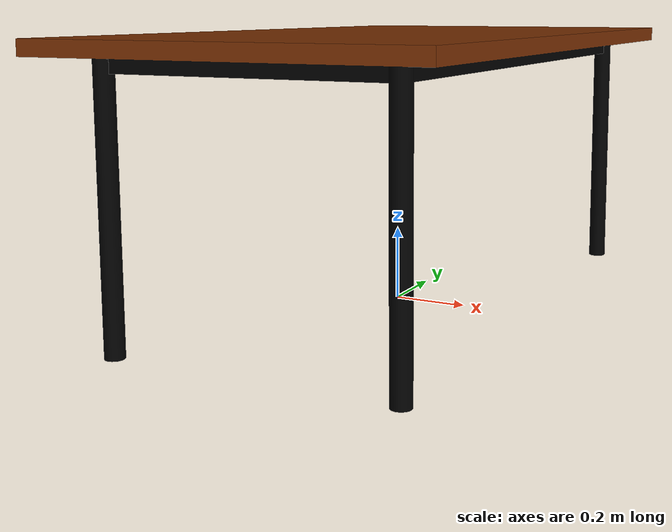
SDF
<?xml version="1.0" ?>
<sdf version="1.5">
  <model name="table_1">
    <static>true</static>
    <link name="table_1">
      <collision name="table_1">
        <pose>0 0 0 0 0 0</pose>
        <geometry>
          <mesh>
            <uri>model://table_1/meshes/model.dae</uri>
          </mesh>
        </geometry>
      </collision>

      <visual name="table_1">
      <cast_shadows>true</cast_shadows>
        <geometry>
          <mesh>
          <uri>model://table_1/meshes/model.dae</uri>
        </mesh>
        </geometry>
      </visual>
    </link>
  </model>
</sdf>
